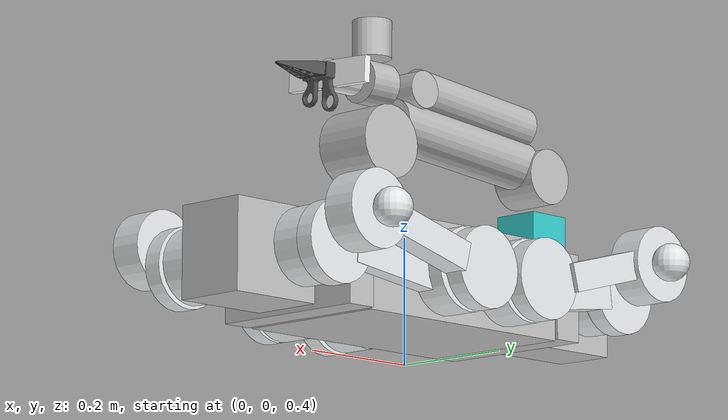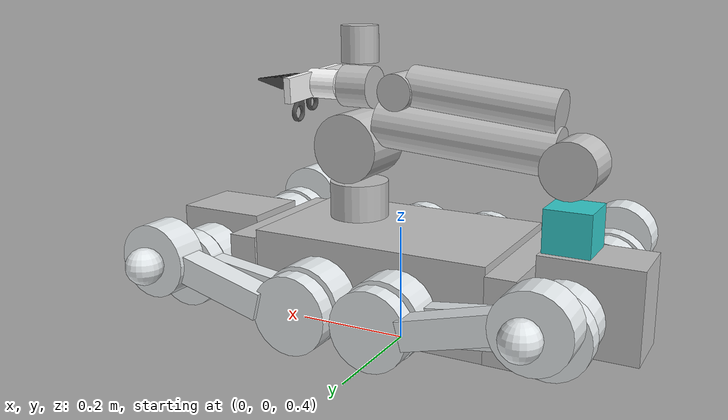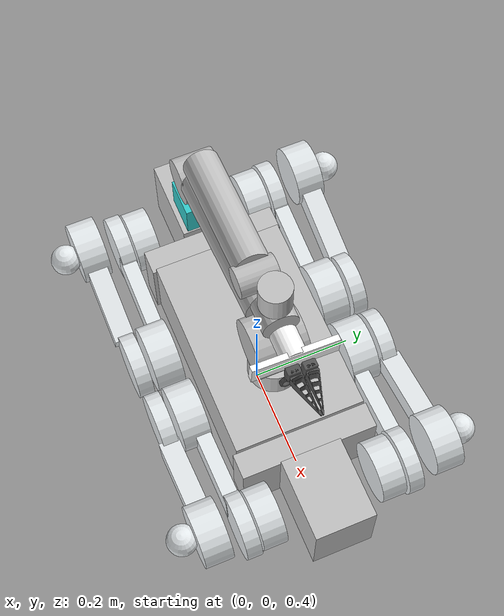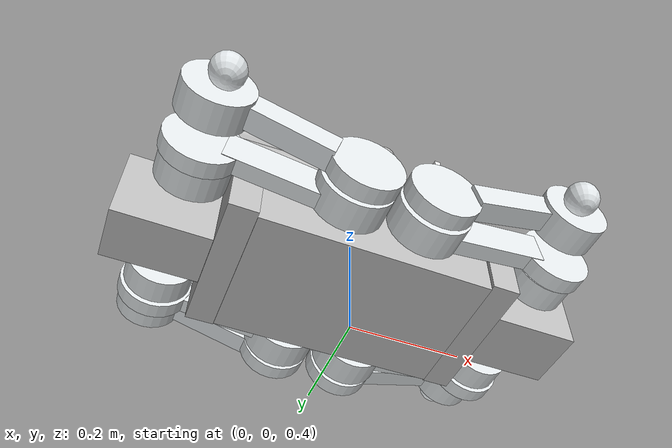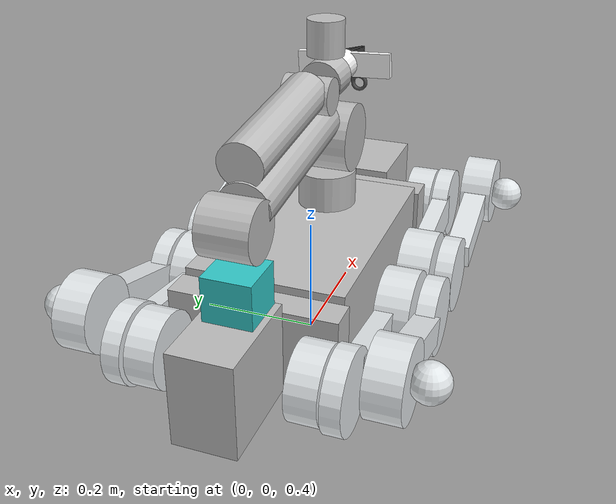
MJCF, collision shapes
<mujoco model="nova_dog">
  <compiler angle="radian" meshdir="../assets/meshes/" autolimits="true"/>

  <option gravity="0 0 -9.81" timestep="0.002">
    <flag warmstart="enable"/>
  </option>

  <default>
    <joint damping="1.0" armature="0.01"/>
    <geom friction="1 0.5 0.5" condim="3" conaffinity="1" contype="1"/>
    <motor ctrllimited="true"/>
    <!-- 腿关节 PD 参数: kp×6 + kv=5 (12s稳定，43%@vx=0.5，59%@vx=1.0)
         部署 inferKp=[65,95,120], 训练约 kp×6, kv≈5
         验证: vx=0.5→43%稳定12s; vx=1.0→59%; kp×5/kv=3在7.1s崩溃 -->
    <default class="leg_hip">
      <joint damping="0"/>
      <position kp="390" kv="5"/>
    </default>
    <default class="leg_thigh">
      <joint damping="0"/>
      <position kp="570" kv="5"/>
    </default>
    <default class="leg_calf">
      <joint damping="0"/>
      <position kp="720" kv="5"/>
    </default>
    <default class="leg_foot">
      <joint damping="0"/>
      <position kp="0" kv="1"/>
    </default>
    <default class="arm_joint">
      <joint damping="3.0"/>
      <position kp="200" kv="8"/>
    </default>
  </default>

  <asset>
    <!-- 视觉 mesh -->
    <mesh name="base_link" file="base_link.STL"/>
    <mesh name="arm_mesh_0" file="arm_mesh_0.STL"/>
    <mesh name="arm_mesh_1" file="arm_mesh_1.STL"/>
    <mesh name="arm_mesh_2" file="arm_mesh_2.STL"/>
    <mesh name="arm_mesh_3" file="arm_mesh_3.STL"/>
    <mesh name="arm_mesh_4" file="arm_mesh_4.STL"/>
    <mesh name="arm_mesh_5" file="arm_mesh_5.STL"/>
    <mesh name="arm_mesh_6" file="arm_mesh_6.STL"/>
    <mesh name="arm_mesh_7_1" file="arm_mesh_7_1.STL"/>
    <mesh name="arm_mesh_7_2" file="arm_mesh_7_2.STL"/>
    <mesh name="fr_hip_Link" file="fr_hip_Link.STL"/>
    <mesh name="fr_thigh_Link" file="fr_thigh_Link.STL"/>
    <mesh name="fr_calf_Link" file="fr_calf_Link.STL"/>
    <mesh name="fr_foot_Link" file="fr_foot_Link.STL"/>
    <mesh name="fl_hip_Link" file="fl_hip_Link.STL"/>
    <mesh name="fl_thigh_Link" file="fl_thigh_Link.STL"/>
    <mesh name="fl_calf_Link" file="fl_calf_Link.STL"/>
    <mesh name="fl_foot_Link" file="fl_foot_Link.STL"/>
    <mesh name="rr_hip_Link" file="rr_hip_Link.STL"/>
    <mesh name="rr_thigh_Link" file="rr_thigh_Link.STL"/>
    <mesh name="rr_calf_Link" file="rr_calf_Link.STL"/>
    <mesh name="rr_foot_Link" file="rr_foot_Link.STL"/>
    <mesh name="rl_hip_Link" file="rl_hip_Link.STL"/>
    <mesh name="rl_thigh_Link" file="rl_thigh_Link.STL"/>
    <mesh name="rl_calf_Link" file="rl_calf_Link.STL"/>
    <mesh name="rl_foot_Link" file="rl_foot_Link.STL"/>
    <mesh name="lidar2_Link" file="lidar2_Link.STL"/>
  </asset>

  <worldbody>
    <!-- ── 机器人自由基体 ─────────────────────────────────────── -->
    <body name="base_link" pos="0 0 0.45">
      <freejoint name="root"/>
      <inertial pos="-0.00111 0.00718 0.07632" mass="18.69147"
                diaginertia="0.24077 0.63159 0.58481"/>

      <!-- 躯体碰撞 -->
      <geom name="chassis_main" size="0.205 0.129 0.0775" pos="0 0.00124 0.07541"
            type="box" rgba="0.75 0.75 0.75 1" group="3"/>
      <geom name="chassis_r" size="0.025 0.135 0.07" pos="0.23 0 0.07"
            type="box" rgba="0.75 0.75 0.75 1" group="3"/>
      <geom name="chassis_l" size="0.025 0.135 0.07" pos="-0.23 0 0.07"
            type="box" rgba="0.75 0.75 0.75 1" group="3"/>
      <geom name="chassis_fr" size="0.08 0.06 0.072" pos="0.335 0 0.08"
            type="box" rgba="0.75 0.75 0.75 1" group="3"/>
      <geom name="chassis_rl" size="0.0825 0.05 0.075" pos="-0.3375 0 0.08"
            type="box" rgba="0.75 0.75 0.75 1" group="3"/>

      <!-- 躯体视觉 (group=2, 不参与碰撞) -->
      <geom name="base_visual" type="mesh" mesh="base_link"
            rgba="0.75 0.75 0.75 1" group="2" contype="0" conaffinity="0"/>

      <!-- ── Livox Mid-360 安装位 (导航 LiDAR, bridge 依赖此名) ── -->
      <body name="lidar_link" pos="-0.29638 -0.0012453 0.19435" quat="-3.67321e-06 0 0 1">
        <geom name="lidar_housing" type="mesh" mesh="lidar2_Link"
              rgba="0.2 0.8 0.8 1" contype="0" conaffinity="0" group="2"/>
        <geom name="lidar_col" type="box" size="0.0384 0.0384 0.04005"
              pos="0 0 -0.00945" rgba="0.2 0.8 0.8 0.3" group="3"/>
      </body>

      <!-- ── Front Camera (RGB-D, 640x480, 用于感知和深度) ── -->
      <body name="front_camera_link" pos="0.15 0 0.05" euler="0 0.2 0">
        <camera name="front_camera" fovy="60" mode="fixed"/>
        <geom name="camera_vis" type="box" size="0.02 0.02 0.01"
              rgba="0.1 0.1 0.1 1" contype="0" conaffinity="0" group="2"/>
      </body>

      <!--  机械臂 (6 DOF + 夹爪)                                 -->
      <body name="arm_link_0" pos="0.08 0 0.158">
        <inertial pos="0 0 0.031" mass="1.22"
                  diaginertia="0.00081006 0.00036678 0.0011734"/>
        <geom name="arm0_vis" type="mesh" mesh="arm_mesh_0"
              rgba="0.75 0.75 0.75 1" group="2" contype="0" conaffinity="0"/>
        <geom name="arm0_col" size="0.05 0.031" pos="0 0 0.035"
              type="cylinder" rgba="0.75 0.75 0.75 1" group="3"/>

        <body name="arm_link_1" pos="0 0 0.1281">
          <inertial pos="-0.00051492 -0.00324 -0.005"
                    quat="0.707769 -0.00371747 -0.00372778 0.706425"
                    mass="1.177" diaginertia="0.000375591 0.000232766 0.000177704"/>
          <joint name="arm_joint_1" class="arm_joint" axis="0 0 1" range="-3.14 3.14"/>
          <geom name="arm1_vis" type="mesh" mesh="arm_mesh_1"
                rgba="0.75 0.75 0.75 1" group="2" contype="0" conaffinity="0"/>
          <geom name="arm1_col" size="0.058 0.05" quat="0.707105 0.707108 0 0"
                type="cylinder" rgba="0.75 0.75 0.75 1" group="3"/>

          <body name="arm_link_2" quat="0.000669153 -0.000669155 -0.707108 0.707105">
            <inertial pos="0.276 -0.0116 0"
                      quat="0.500681 0.501204 0.49889 0.499221"
                      mass="1.315" diaginertia="0.00611318 0.0059544 0.000656142"/>
            <joint name="arm_joint_2" class="arm_joint" axis="0 0 1" range="-3.14 0.75"/>
            <geom name="arm2_vis" type="mesh" mesh="arm_mesh_2"
                  rgba="0.75 0.75 0.75 1" group="2" contype="0" conaffinity="0"/>
            <geom name="arm2_col1" size="0.04 0.152" pos="0.198 -0.03 0"
                  quat="0.71357 -0.0279926 0.699442 0.028558"
                  type="cylinder" rgba="0.75 0.75 0.75 1" group="3"/>
            <geom name="arm2_col2" size="0.045 0.04" pos="0.37425 0 0"
                  quat="0.161782 0 0 -0.986826"
                  type="cylinder" rgba="0.75 0.75 0.75 1" group="3"/>

            <body name="arm_link_3" pos="0.37425 0 0" quat="0.161782 0 0 -0.986826">
              <inertial pos="0.204 0.0195 0.00036064"
                        quat="0.493197 0.495016 0.504643 0.507002"
                        mass="0.86" diaginertia="0.00375607 0.003688 0.000541805"/>
              <joint name="arm_joint_3" class="arm_joint" axis="0 0 1" range="0 3.14"/>
              <geom name="arm3_vis" type="mesh" mesh="arm_mesh_3"
                    rgba="0.75 0.75 0.75 1" group="2" contype="0" conaffinity="0"/>
              <geom name="arm3_col1" size="0.035 0.125" pos="0.17 0.04 0"
                    quat="0.702553 0.0801124 0.702555 -0.0801127"
                    type="cylinder" rgba="0.75 0.75 0.75 1" group="3"/>
              <geom name="arm3_col2" size="0.03 0.039" pos="0.30395 0.00032772 0"
                    quat="0.986361 0 0 -0.164598"
                    type="cylinder" rgba="0.75 0.75 0.75 1" group="3"/>

              <body name="arm_link_4" pos="0.30395 0.00032772 0" quat="0.986361 0 0 -0.164598">
                <inertial pos="0.0675 0.0574 -0.0038986"
                          quat="0.368124 0.410354 0.58452 0.595341"
                          mass="0.407" diaginertia="4.66977e-05 4.38361e-05 2.20092e-05"/>
                <joint name="arm_joint_4" class="arm_joint" axis="0 0 1" range="-1.5 1.5"/>
                <geom name="arm4_vis" type="mesh" mesh="arm_mesh_4"
                      rgba="0.75 0.75 0.75 1" group="2" contype="0" conaffinity="0"/>
                <geom name="arm4_col" size="0.031 0.03" pos="0.080376 0.0718417 -0.0020003"
                      quat="0.501889 -0.499055 -0.500943 -0.498104"
                      type="cylinder" rgba="0.75 0.75 0.75 1" group="3"/>

                <body name="arm_link_5" pos="0.080376 0.0018417 -0.0020003"
                      quat="0.501889 -0.499055 -0.500943 -0.498104">
                  <inertial pos="0.00043477 0.0038 0.0027"
                            quat="0.707715 0.00946112 -0.00947909 0.706371"
                            mass="0.35" diaginertia="1.57595e-05 1.1674e-05 1.08905e-05"/>
                  <joint name="arm_joint_5" class="arm_joint" axis="0 0 1" range="-1.5 1.5"/>
                  <geom name="arm5_vis" type="mesh" mesh="arm_mesh_5"
                        rgba="0.75 0.75 0.75 1" group="2" contype="0" conaffinity="0"/>
                  <geom name="arm5_col" size="0.035 0.028" pos="0 0.001 0"
                        quat="0.707105 0.707108 0 0"
                        type="cylinder" rgba="0.75 0.75 0.75 1" group="3"/>

                  <body name="arm_link_6" pos="0.0020919 0.029927 0"
                        quat="0.707105 -0.707108 0.000671965 -0.000671962">
                    <inertial pos="-0.001629 -1.2741e-06 0.044"
                              quat="0.0116054 0.707025 -0.0114992 0.707"
                              mass="0.32342" diaginertia="0.00014443 0.00013389 1.18708e-05"/>
                    <joint name="arm_joint_6" class="arm_joint" axis="0 0 1" range="-3.14 3.14"/>
                    <geom name="arm6_vis" type="mesh" mesh="arm_mesh_6"
                          rgba="1 1 1 1" group="2" contype="0" conaffinity="0"/>
                    <geom name="arm6_col1" size="0.0825 0.021 0.006" pos="0 0 0.062"
                          quat="0.999688 0 0 -0.0249974" type="box" rgba="1 1 1 1" group="3"/>
                    <geom name="arm6_col2" size="0.025 0.028" pos="0 0 0.038"
                          type="cylinder" rgba="1 1 1 1" group="3"/>

                    <!-- 左夹爪 -->
                    <body name="arm_gripper_left" pos="-0.0016279 0 0.064947"
                          quat="0.999706 0 0 -0.0242341">
                      <inertial pos="0.015576 0.0075042 0.027703"
                                quat="0.818156 0.562577 -0.118669 0.00677282"
                                mass="0.019078" diaginertia="7.22578e-06 5.26552e-06 3.9822e-06"/>
                      <joint name="arm_gripper_left_joint" axis="-1 0 0" type="slide"
                             range="-0.043 0"/>
                      <geom name="gripper_l" type="mesh" mesh="arm_mesh_7_1"
                            rgba="0.31 0.31 0.31 1"/>
                    </body>
                    <!-- 右夹爪 -->
                    <body name="arm_gripper_right" pos="-0.0016279 0 0.064947"
                          quat="0.999706 0 0 -0.0242341">
                      <inertial pos="-0.015696 0.010047 0.027253"
                                quat="0.766199 0.631928 0.114039 -0.0245308"
                                mass="0.019828" diaginertia="8.97659e-06 7.00181e-06 4.1092e-06"/>
                      <joint name="arm_gripper_right_joint" axis="-1 0 0" type="slide"
                             range="0 0.043"/>
                      <geom name="gripper_r" type="mesh" mesh="arm_mesh_7_2"
                            rgba="0.33 0.33 0.33 1"/>
                    </body>
                  </body>
                </body>
              </body>
            </body>
          </body>
        </body>
      </body>

      <!--  前右腿 (FR)                                            -->
      <body name="fr_hip_Link" pos="0.2395 -0.064595 0.08065">
        <inertial pos="0.07152 -0.05064 0.00083"
                  quat="0.626329 0.617527 0.336122 0.336742"
                  mass="1.66356" diaginertia="0.0168527 0.0160417 0.00261558"/>
        <joint name="fr_hip_joint" class="leg_hip" axis="-1 0 0" range="-0.41 0.41"/>
        <geom name="fr_hip_vis" type="mesh" mesh="fr_hip_Link"
              rgba="0.9 0.92 0.93 1" group="2" contype="0" conaffinity="0"/>
        <geom name="fr_hip_col" size="0.06 0.024" pos="0.07752 -0.05564 0.00083"
              quat="0.707105 0.707108 0 0" type="cylinder"
              rgba="0.9 0.92 0.93 1" group="3"/>

        <body name="fr_thigh_Link" pos="0.078 -0.0795 0">
          <inertial pos="-0.19518 -0.02859 -0.01131"
                    quat="0.481494 0.451865 0.516848 0.544838"
                    mass="2.41" diaginertia="0.12237 0.120525 0.00343429"/>
          <joint name="fr_thigh_joint" class="leg_thigh" axis="0 1 0" range="-3.14 0"/>
          <geom name="fr_thigh_vis" type="mesh" mesh="fr_thigh_Link"
                rgba="0.9 0.92 0.93 1" group="2" contype="0" conaffinity="0"/>
          <geom name="fr_thigh_col1" size="0.064 0.015" pos="0 -0.0195 0"
                quat="0.707105 0.707108 0 0" type="cylinder"
                rgba="0.9 0.92 0.93 1" group="3"/>
          <geom name="fr_thigh_col2" size="0.09 0.015 0.03" pos="-0.125 -0.02059 -0.01001"
                quat="0.997888 0 -0.0649542 0" type="box"
                rgba="0.9 0.92 0.93 1" group="3"/>
          <geom name="fr_thigh_col3" size="0.0655 0.028" pos="-0.2485 -0.032 -0.0135"
                quat="0.707105 0.707108 0 0" type="cylinder"
                rgba="0.9 0.92 0.93 1" group="3"/>

          <body name="fr_calf_Link" pos="-0.24954 -0.057 -0.01515">
            <inertial pos="0.17379 -0.02903 0.03734"
                      quat="0.576479 0.481443 0.405075 0.521344"
                      mass="1.89384" diaginertia="0.0857584 0.084918 0.00239355"/>
            <joint name="fr_calf_joint" class="leg_calf" axis="0 1 0" range="0 3.14"/>
            <geom name="fr_calf_vis" type="mesh" mesh="fr_calf_Link"
                  rgba="0.9 0.92 0.93 1" group="2" contype="0" conaffinity="0"/>
            <geom name="fr_calf_col1" size="0.0635 0.015" pos="0 -0.02653 0"
                  quat="0.707105 0.707108 0 0" type="cylinder"
                  rgba="0.9 0.92 0.93 1" group="3"/>
            <geom name="fr_calf_col2" size="0.09 0.02 0.0225" pos="0.14 -0.02903 0.0305"
                  quat="0.991445 0 -0.130526 0" type="box"
                  rgba="0.9 0.92 0.93 1" group="3"/>
            <geom name="fr_calf_col3" size="0.06 0.0275" pos="0.249 -0.02903 0.0531"
                  quat="0.707105 0.707108 0 0" type="cylinder"
                  rgba="0.9 0.92 0.93 1" group="3"/>

            <body name="fr_foot_Link" pos="0.24443 -0.061 0.0525">
              <inertial pos="0 -0.01336 0" quat="0.707107 0 0 0.707107"
                        mass="0.32377" diaginertia="0.00121 0.00071 0.00071"/>
              <joint name="fr_foot_joint" class="leg_foot" axis="0 1 0" limited="false"/>
              <geom name="fr_foot_vis" type="mesh" mesh="fr_foot_Link"
                    rgba="0.9 0.92 0.93 1" group="2" contype="0" conaffinity="0"/>
              <geom name="fr_foot_col" size="0.03" pos="0 -0.017 0"
                    type="sphere" rgba="0.9 0.92 0.93 0.5" group="3"/>
            </body>
          </body>
        </body>
      </body>

      <!--  前左腿 (FL)                                            -->
      <body name="fl_hip_Link" pos="0.2395 0.065405 0.08065">
        <inertial pos="0.07132 0.05064 0.00088"
                  quat="0.34195 0.329 0.622752 0.622101"
                  mass="1.66356" diaginertia="0.0168353 0.0159606 0.00259407"/>
        <joint name="fl_hip_joint" class="leg_hip" axis="-1 0 0" range="-0.41 0.41"/>
        <geom name="fl_hip_vis" type="mesh" mesh="fl_hip_Link"
              rgba="0.9 0.92 0.93 1" group="2" contype="0" conaffinity="0"/>
        <geom name="fl_hip_col" size="0.06 0.024" pos="0.07752 0.05564 0.00083"
              quat="0.707105 0.707108 0 0" type="cylinder"
              rgba="0.9 0.92 0.93 1" group="3"/>

        <body name="fl_thigh_Link" pos="0.078 0.0795 0">
          <inertial pos="-0.19482 0.02859 -0.01176"
                    quat="0.542469 0.519007 0.447927 0.48551"
                    mass="2.41" diaginertia="0.121966 0.120079 0.00347509"/>
          <joint name="fl_thigh_joint" class="leg_thigh" axis="0 -1 0" range="0 3.14"/>
          <geom name="fl_thigh_vis" type="mesh" mesh="fl_thigh_Link"
                rgba="0.9 0.92 0.93 1" group="2" contype="0" conaffinity="0"/>
          <geom name="fl_thigh_col1" size="0.064 0.015" pos="0 0.0195 0"
                quat="0.707105 0.707108 0 0" type="cylinder"
                rgba="0.9 0.92 0.93 1" group="3"/>
          <geom name="fl_thigh_col2" size="0.09 0.015 0.03" pos="-0.125 0.02059 -0.01001"
                quat="0.997888 0 -0.0649542 0" type="box"
                rgba="0.9 0.92 0.93 1" group="3"/>
          <geom name="fl_thigh_col3" size="0.0655 0.028" pos="-0.2485 0.032 -0.0135"
                quat="0.707105 0.707108 0 0" type="cylinder"
                rgba="0.9 0.92 0.93 1" group="3"/>

          <body name="fl_calf_Link" pos="-0.24954 0.057 -0.01515">
            <inertial pos="0.17384 0.02903 0.03735"
                      quat="0.52142 0.405052 0.481468 0.576405"
                      mass="1.89384" diaginertia="0.0858075 0.0849699 0.00239256"/>
            <joint name="fl_calf_joint" class="leg_calf" axis="0 -1 0" range="-3.14 0"/>
            <geom name="fl_calf_vis" type="mesh" mesh="fl_calf_Link"
                  rgba="0.9 0.92 0.93 1" group="2" contype="0" conaffinity="0"/>
            <geom name="fl_calf_col1" size="0.0635 0.015" pos="0 0.02653 0"
                  quat="0.707105 0.707108 0 0" type="cylinder"
                  rgba="0.9 0.92 0.93 1" group="3"/>
            <geom name="fl_calf_col2" size="0.09 0.02 0.0225" pos="0.14 0.02903 0.0305"
                  quat="0.991445 0 -0.130526 0" type="box"
                  rgba="0.9 0.92 0.93 1" group="3"/>
            <geom name="fl_calf_col3" size="0.06 0.0275" pos="0.249 0.02903 0.0531"
                  quat="0.707105 0.707108 0 0" type="cylinder"
                  rgba="0.9 0.92 0.93 1" group="3"/>

            <body name="fl_foot_Link" pos="0.24443 0.061 0.0525">
              <inertial pos="0 0.01336 0" quat="0.707107 0 0 0.707107"
                        mass="0.32377" diaginertia="0.00121 0.00071 0.00071"/>
              <joint name="fl_foot_joint" class="leg_foot" axis="0 -1 0" limited="false"/>
              <geom name="fl_foot_vis" type="mesh" mesh="fl_foot_Link"
                    rgba="0.9 0.92 0.93 1" group="2" contype="0" conaffinity="0"/>
              <geom name="fl_foot_col" size="0.03" pos="0 0.017 0"
                    type="sphere" rgba="0.9 0.92 0.93 0.5" group="3"/>
            </body>
          </body>
        </body>
      </body>

      <!--  后右腿 (RR)                                            -->
      <body name="rr_hip_Link" pos="-0.2395 -0.066245 0.08065">
        <inertial pos="-0.07082 -0.05065 0.00038"
                  quat="0.326741 0.342856 0.620276 0.625258"
                  mass="1.66356" diaginertia="0.0166991 0.0158598 0.00257107"/>
        <joint name="rr_hip_joint" class="leg_hip" axis="1 0 0" range="-0.41 0.41"/>
        <geom name="rr_hip_vis" type="mesh" mesh="rr_hip_Link"
              rgba="0.9 0.92 0.93 1" group="2" contype="0" conaffinity="0"/>
        <geom name="rr_hip_col" size="0.06 0.024" pos="-0.07752 -0.05564 0.00083"
              quat="0.707105 0.707108 0 0" type="cylinder"
              rgba="0.9 0.92 0.93 1" group="3"/>

        <body name="rr_thigh_Link" pos="-0.078 -0.079497 -0.00063243">
          <inertial pos="0.19475 -0.02849 -0.01303"
                    quat="0.514671 0.546677 0.484044 0.449398"
                    mass="2.41" diaginertia="0.121971 0.120083 0.00347624"/>
          <joint name="rr_thigh_joint" class="leg_thigh" axis="0 0.999968 0.00795509"
                 range="0 3.14"/>
          <geom name="rr_thigh_vis" type="mesh" mesh="rr_thigh_Link"
                rgba="0.9 0.92 0.93 1" group="2" contype="0" conaffinity="0"/>
          <geom name="rr_thigh_col1" size="0.064 0.015" pos="0 -0.0195 0"
                quat="0.707105 0.707108 0 0" type="cylinder"
                rgba="0.9 0.92 0.93 1" group="3"/>
          <geom name="rr_thigh_col2" size="0.09 0.015 0.03" pos="0.125 -0.02059 -0.01001"
                quat="0.997888 0 0.0649542 0" type="box"
                rgba="0.9 0.92 0.93 1" group="3"/>
          <geom name="rr_thigh_col3" size="0.0655 0.028" pos="0.2485 -0.032 -0.0135"
                quat="0.707105 0.707108 0 0" type="cylinder"
                rgba="0.9 0.92 0.93 1" group="3"/>

          <body name="rr_calf_Link" pos="0.24946 -0.056867 -0.016903">
            <inertial pos="-0.17337 -0.02935 0.03924"
                      quat="0.398595 0.526947 0.576038 0.481279"
                      mass="1.89384" diaginertia="0.0858068 0.0849678 0.0023954"/>
            <joint name="rr_calf_joint" class="leg_calf" axis="0 0.999968 0.00795509"
                   range="-6.28 0"/>
            <geom name="rr_calf_vis" type="mesh" mesh="rr_calf_Link"
                  rgba="0.9 0.92 0.93 1" group="2" contype="0" conaffinity="0"/>
            <geom name="rr_calf_col1" size="0.0635 0.015" pos="0 -0.02653 0"
                  quat="0.707105 0.707108 0 0" type="cylinder"
                  rgba="0.9 0.92 0.93 1" group="3"/>
            <geom name="rr_calf_col2" size="0.09 0.02 0.0225" pos="-0.14 -0.02903 0.0305"
                  quat="0.991445 0 0.130526 0" type="box"
                  rgba="0.9 0.92 0.93 1" group="3"/>
            <geom name="rr_calf_col3" size="0.06 0.0275" pos="-0.249 -0.02903 0.0531"
                  quat="0.707105 0.707108 0 0" type="cylinder"
                  rgba="0.9 0.92 0.93 1" group="3"/>

            <body name="rr_foot_Link" pos="-0.24377 -0.061439 0.054994">
              <inertial pos="0 -0.01336 -0.00011" quat="0.707107 0 0 0.707107"
                        mass="0.32377" diaginertia="0.00121 0.00071 0.00071"/>
              <joint name="rr_foot_joint" class="leg_foot" axis="0 0.999968 0.00795509"
                     limited="false"/>
              <geom name="rr_foot_vis" type="mesh" mesh="rr_foot_Link"
                    rgba="0.9 0.92 0.93 1" group="2" contype="0" conaffinity="0"/>
              <geom name="rr_foot_col" size="0.03" pos="0 -0.017 0"
                    type="sphere" rgba="0.9 0.92 0.93 0.5" group="3"/>
            </body>
          </body>
        </body>
      </body>

      <!--  后左腿 (RL)                                            -->
      <body name="rl_hip_Link" pos="-0.2395 0.063755 0.08065">
        <inertial pos="-0.07136 0.05064 -0.00087"
                  quat="0.622182 0.622765 0.328978 0.341799"
                  mass="1.66356" diaginertia="0.0168545 0.0159706 0.00259488"/>
        <joint name="rl_hip_joint" class="leg_hip" axis="1 0 0" range="-0.41 0.41"/>
        <geom name="rl_hip_vis" type="mesh" mesh="rl_hip_Link"
              rgba="0.9 0.92 0.93 1" group="2" contype="0" conaffinity="0"/>
        <geom name="rl_hip_col" size="0.06 0.024" pos="-0.07752 0.05564 0.00083"
              quat="0.707105 0.707108 0 0" type="cylinder"
              rgba="0.9 0.92 0.93 1" group="3"/>

        <body name="rl_thigh_Link" pos="-0.078 0.0795 0">
          <inertial pos="0.19518 0.02859 -0.01131"
                    quat="0.451865 0.481494 0.544838 0.516848"
                    mass="2.41" diaginertia="0.12237 0.120525 0.00343429"/>
          <joint name="rl_thigh_joint" class="leg_thigh" axis="0 -1 0" range="-3.14 0"/>
          <geom name="rl_thigh_vis" type="mesh" mesh="rl_thigh_Link"
                rgba="0.9 0.92 0.93 1" group="2" contype="0" conaffinity="0"/>
          <geom name="rl_thigh_col1" size="0.064 0.015" pos="0 0.0195 0"
                quat="0.707105 0.707108 0 0" type="cylinder"
                rgba="0.9 0.92 0.93 1" group="3"/>
          <geom name="rl_thigh_col2" size="0.09 0.015 0.03" pos="0.125 0.02059 -0.01001"
                quat="0.997888 0 0.0649542 0" type="box"
                rgba="0.9 0.92 0.93 1" group="3"/>
          <geom name="rl_thigh_col3" size="0.0655 0.028" pos="0.2485 0.032 -0.0135"
                quat="0.707105 0.707108 0 0" type="cylinder"
                rgba="0.9 0.92 0.93 1" group="3"/>

          <body name="rl_calf_Link" pos="0.24954 0.057 -0.01515">
            <inertial pos="-0.17385 0.02903 0.03733"
                      quat="0.479036 0.579585 0.51781 0.408019"
                      mass="1.89384" diaginertia="0.0858096 0.0849754 0.00239501"/>
            <joint name="rl_calf_joint" class="leg_calf" axis="0 -1 0" range="0 6.28"/>
            <geom name="rl_calf_vis" type="mesh" mesh="rl_calf_Link"
                  rgba="0.9 0.92 0.93 1" group="2" contype="0" conaffinity="0"/>
            <geom name="rl_calf_col1" size="0.0635 0.015" pos="0 0.02653 0"
                  quat="0.707105 0.707108 0 0" type="cylinder"
                  rgba="0.9 0.92 0.93 1" group="3"/>
            <geom name="rl_calf_col2" size="0.09 0.02 0.0225" pos="-0.14 0.02903 0.0305"
                  quat="0.991445 0 0.130526 0" type="box"
                  rgba="0.9 0.92 0.93 1" group="3"/>
            <geom name="rl_calf_col3" size="0.06 0.0275" pos="-0.249 0.02903 0.0531"
                  quat="0.707105 0.707108 0 0" type="cylinder"
                  rgba="0.9 0.92 0.93 1" group="3"/>

            <body name="rl_foot_Link" pos="-0.24443 0.061 0.0525">
              <inertial pos="0 0.01336 0" quat="0.707107 0 0 0.707107"
                        mass="0.32377" diaginertia="0.00121 0.00071 0.00071"/>
              <joint name="rl_foot_joint" class="leg_foot" axis="0 -1 0" limited="false"/>
              <geom name="rl_foot_vis" type="mesh" mesh="rl_foot_Link"
                    rgba="0.9 0.92 0.93 1" group="2" contype="0" conaffinity="0"/>
              <geom name="rl_foot_col" size="0.03" pos="0 0.017 0"
                    type="sphere" rgba="0.9 0.92 0.93 0.5" group="3"/>
            </body>
          </body>
        </body>
      </body>

    </body><!-- end base_link -->
  </worldbody>

  <!--  Actuators — 位置控制 (PD), kp/kv 来自 brainstem profile  -->
  <actuator>
    <!-- 机械臂 -->
    <position name="arm1_pos" joint="arm_joint_1" class="arm_joint" ctrlrange="-3.14 3.14"/>
    <position name="arm2_pos" joint="arm_joint_2" class="arm_joint" ctrlrange="-3.14 0.75"/>
    <position name="arm3_pos" joint="arm_joint_3" class="arm_joint" ctrlrange="0 3.14"/>
    <position name="arm4_pos" joint="arm_joint_4" class="arm_joint" ctrlrange="-1.5 1.5"/>
    <position name="arm5_pos" joint="arm_joint_5" class="arm_joint" ctrlrange="-1.5 1.5"/>
    <position name="arm6_pos" joint="arm_joint_6" class="arm_joint" ctrlrange="-3.14 3.14"/>
    <position name="gripper_l_pos" joint="arm_gripper_left_joint" kp="50" ctrlrange="-0.043 0"/>
    <position name="gripper_r_pos" joint="arm_gripper_right_joint" kp="50" ctrlrange="0 0.043"/>

    <!-- FR 腿 -->
    <position name="fr_hip_pos" joint="fr_hip_joint" class="leg_hip" ctrlrange="-0.41 0.41"/>
    <position name="fr_thigh_pos" joint="fr_thigh_joint" class="leg_thigh" ctrlrange="-3.14 0"/>
    <position name="fr_calf_pos" joint="fr_calf_joint" class="leg_calf" ctrlrange="0 3.14"/>
    <position name="fr_foot_pos" joint="fr_foot_joint" class="leg_foot" ctrlrange="-3.14 3.14"/>

    <!-- FL 腿 -->
    <position name="fl_hip_pos" joint="fl_hip_joint" class="leg_hip" ctrlrange="-0.41 0.41"/>
    <position name="fl_thigh_pos" joint="fl_thigh_joint" class="leg_thigh" ctrlrange="0 3.14"/>
    <position name="fl_calf_pos" joint="fl_calf_joint" class="leg_calf" ctrlrange="-3.14 0"/>
    <position name="fl_foot_pos" joint="fl_foot_joint" class="leg_foot" ctrlrange="-3.14 3.14"/>

    <!-- RR 腿 -->
    <position name="rr_hip_pos" joint="rr_hip_joint" class="leg_hip" ctrlrange="-0.41 0.41"/>
    <position name="rr_thigh_pos" joint="rr_thigh_joint" class="leg_thigh" ctrlrange="0 3.14"/>
    <position name="rr_calf_pos" joint="rr_calf_joint" class="leg_calf" ctrlrange="-6.28 0"/>
    <position name="rr_foot_pos" joint="rr_foot_joint" class="leg_foot" ctrlrange="-3.14 3.14"/>

    <!-- RL 腿 -->
    <position name="rl_hip_pos" joint="rl_hip_joint" class="leg_hip" ctrlrange="-0.41 0.41"/>
    <position name="rl_thigh_pos" joint="rl_thigh_joint" class="leg_thigh" ctrlrange="-3.14 0"/>
    <position name="rl_calf_pos" joint="rl_calf_joint" class="leg_calf" ctrlrange="0 6.28"/>
    <position name="rl_foot_pos" joint="rl_foot_joint" class="leg_foot" ctrlrange="-3.14 3.14"/>
  </actuator>

</mujoco>
